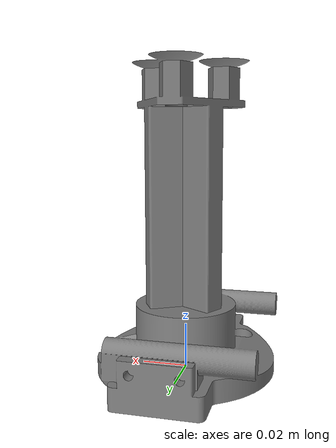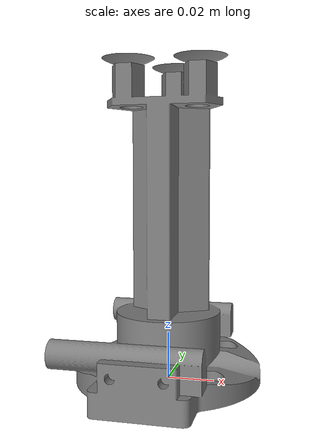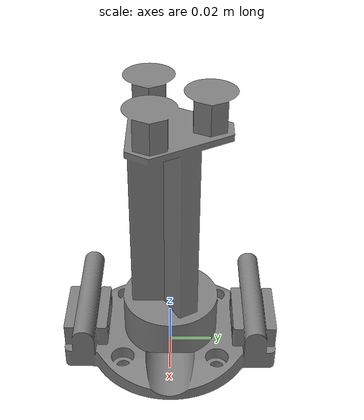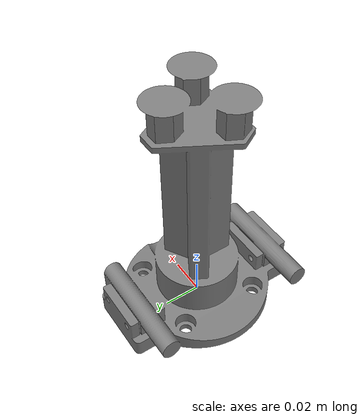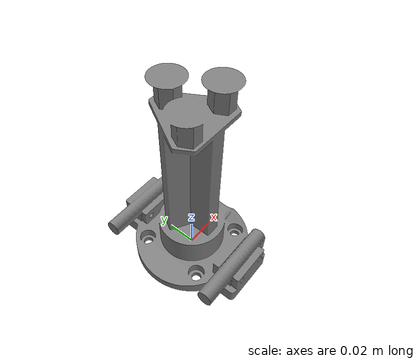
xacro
<?xml version="1.0"?>
<robot name="pneumatic_gripper" xmlns:xacro="http://www.ros.org/wiki/xacro">

  <!-- Import pneumatic_gripper macro -->
  <xacro:include filename="$(find sun_pneumatic_gripper_simulation)/urdf/pneumatic_gripper.xacro" />

  <xacro:pneumatic_gripper
    scale="1.0"
    base_link="base_link"
    create_sucker1_frame="true"
    create_sucker2_frame="true"
    create_sucker3_frame="true"
    create_central_frame="true"
  />

</robot>

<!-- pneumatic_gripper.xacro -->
<robot xmlns:xacro="http://www.ros.org/wiki/xacro">

<xacro:macro
    name="pneumatic_gripper"
    params="
        prefix:=''
        scale:=1.0
        base_link:=base_link
        create_sucker1_frame:=true
        create_sucker2_frame:=true
        create_sucker3_frame:=true
	create_central_frame:=true
        "
>

    <!-- cad_scale to convert from cad to [m] -->
    <xacro:property name="cad_scale" value="0.001"/>
    <!-- local_scale cad to input scale -->
    <xacro:property name="local_scale" value="${cad_scale*scale}"/>
    <xacro:property name="local_scale_collision" value="${cad_scale*scale}"/>
    <!-- origin of mesh wrt link frame -->
    <xacro:property name="pneumatic_gripper_mesh_origin">
        <origin
            xyz="${0.0*local_scale} ${0.0*local_scale} ${0.0*local_scale}"
            rpy="${0.0} ${0.0} ${0.0}"
        />
    </xacro:property>

    <!-- pneumatic_gripper base_link of the gripper -->
    <link name="${prefix}${base_link}">
        <visual>
            <xacro:insert_block name="pneumatic_gripper_mesh_origin" />
            <geometry>
                <mesh
                    filename="package://sun_pneumatic_gripper_simulation/meshes/visual/pneumatic_gripper.stl"
                    scale="${local_scale} ${local_scale} ${local_scale}"
                />
            </geometry>
            <material name="gray">
                <color rgba="0.5 0.5 0.5 1"/>
            </material>
        </visual>
        <collision>
            <xacro:insert_block name="pneumatic_gripper_mesh_origin" />
            <geometry>
                <mesh
                    filename="package://sun_pneumatic_gripper_simulation/meshes/collision/pneumatic_gripper.stl"
                    scale="${local_scale_collision} ${local_scale_collision} ${local_scale_collision}"
                />
            </geometry>
        </collision>
    </link> <!-- end pneumatic_gripper base link -->

    <!-- sucker1 frame -->
    <xacro:if value="${create_sucker1_frame}">
        <link name="${prefix}sucker1_frame" />
        <joint name="${prefix}${base_link}-sucker1_frame" type="fixed">
            <parent link="${prefix}${base_link}" />
            <child link="${prefix}sucker1_frame" />
            <origin xyz="${0.014*scale} ${-0.008*scale} ${0.135*scale}" rpy="0 0 0" />
        </joint>
    </xacro:if>

    <!-- sucker2 frame -->
    <xacro:if value="${create_sucker2_frame}">
        <link name="${prefix}sucker2_frame" />
        <joint name="${prefix}${base_link}-sucker2_frame" type="fixed">
            <parent link="${prefix}${base_link}" />
            <child link="${prefix}sucker2_frame" />
            <origin xyz="${-0.014*scale} ${-0.008*scale} ${0.135*scale}" rpy="0 0 0" />
        </joint>
    </xacro:if>

    <!-- sucker3 frame -->
    <xacro:if value="${create_sucker3_frame}">
        <link name="${prefix}sucker3_frame" />
        <joint name="${prefix}${base_link}-sucker3_frame" type="fixed">
            <parent link="${prefix}${base_link}" />
            <child link="${prefix}sucker3_frame" />
            <origin xyz="0 ${0.016*scale} ${0.135*scale}" rpy="0 0 0" />
        </joint>
    </xacro:if>

    <!-- central frame -->
    <xacro:if value="${create_central_frame}">
        <link name="${prefix}central_frame" />
        <joint name="${prefix}${base_link}-central_frame" type="fixed">
            <parent link="${prefix}${base_link}" />
            <child link="${prefix}central_frame" />
            <origin xyz="0 0 ${0.135*scale}" rpy="0 0 0" />
        </joint>
    </xacro:if>

</xacro:macro> <!-- end pneumatic_gripper macro -->

</robot>
